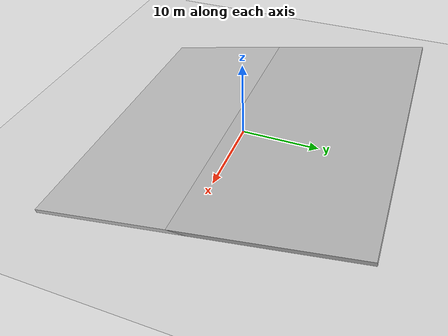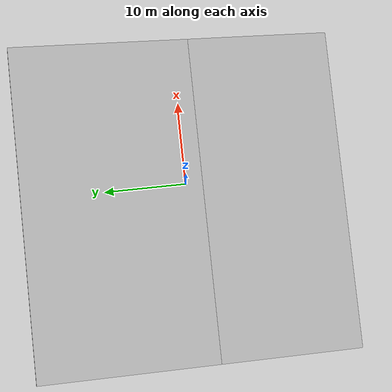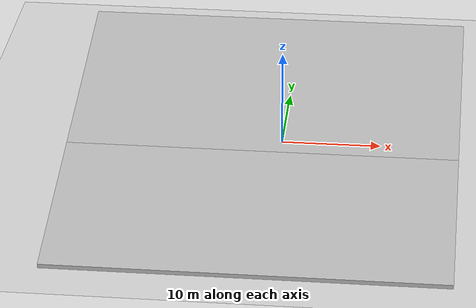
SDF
<?xml version="1.0" ?>

<sdf version="1.6">
  <world name="empty">

    <include>
      <uri>model://sun</uri>
    </include>

    <include>
      <uri>model://ground_plane</uri>
    </include>

    <model name="box">
      <static>true</static>
      <pose>-2 0 0.1 0.2 0 0</pose>
      <link name="link">
        <collision name="collision">
          <geometry>
            <box>
              <size>40.0 40.0 .5</size>
            </box>
          </geometry>
        </collision>
        <visual name="visual">
          <geometry>
            <box>
              <size>40.0 40.0 .5</size>
            </box>
          </geometry>
        </visual>
      </link>
    </model>

  </world>
</sdf>
